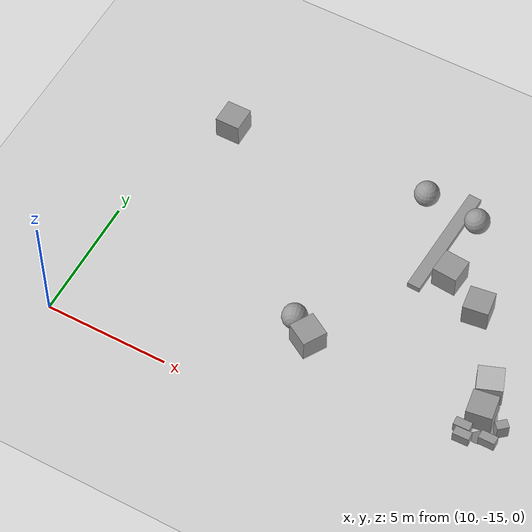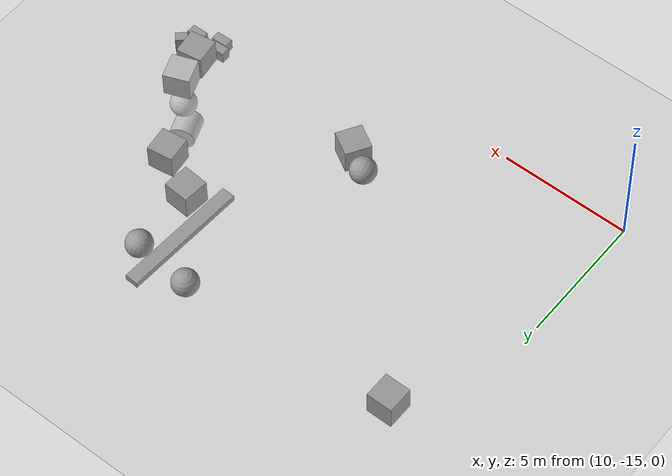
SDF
<sdf version="1.6">
 <world name="default">
  <model name="ground_plane">
   <static>1</static>
   <link name="link">
    <collision name="collision">
     <geometry><plane><normal>0 0 1</normal><size>100 100</size></plane></geometry>
     <surface><friction><ode><mu>100</mu><mu2>50</mu2></ode></friction></surface>
    </collision>
    <visual name="visual">
     <cast_shadows>0</cast_shadows>
     <geometry><plane><normal>0 0 1</normal><size>100 100</size></plane></geometry>
    </visual>
   </link>
  </model>
  <model name="unit_box_8_clone">
   <pose>21.629 -5.33666 0.118862 6e-06 -0.000971 -1.61786</pose>
   <link name="link">
    <inertial>
     <mass>1</mass>
     <inertia>
      <ixx>0.166667</ixx>
      <ixy>0</ixy>
      <ixz>0</ixz>
      <iyy>0.166667</iyy>
      <iyz>0</iyz>
      <izz>0.166667</izz>
     </inertia>
    </inertial>
    <collision name="collision"><geometry><box><size>4.79587 0.517599 0.242375</size></box></geometry></collision>
    <visual name="visual">
     <geometry><box><size>4.79587 0.517599 0.242375</size></box></geometry>
     <material>
      <script><name>Gazebo/Grey</name><uri>file://media/materials/scripts/gazebo.material</uri></script>
     </material>
    </visual>
   </link>
  </model>
  <model name="unit_box_9">
   <pose>24.1258 -7.5853 0.499996 0 -9e-06 0.13837</pose>
   <link name="link">
    <inertial>
     <mass>1</mass>
     <inertia>
      <ixx>0.166667</ixx>
      <ixy>0</ixy>
      <ixz>0</ixz>
      <iyy>0.166667</iyy>
      <iyz>0</iyz>
      <izz>0.166667</izz>
     </inertia>
    </inertial>
    <collision name="collision"><geometry><box><size>1 1 1</size></box></geometry></collision>
    <visual name="visual">
     <geometry><box><size>1 1 1</size></box></geometry>
     <material>
      <script><name>Gazebo/Grey</name><uri>file://media/materials/scripts/gazebo.material</uri></script>
     </material>
    </visual>
   </link>
  </model>
  <model name="unit_box_10">
   <pose>22.5215 -6.7081 0.499995 -1.57079 -1.57079 1.48797</pose>
   <link name="link">
    <inertial>
     <mass>1</mass>
     <inertia>
      <ixx>0.166667</ixx>
      <ixy>0</ixy>
      <ixz>0</ixz>
      <iyy>0.166667</iyy>
      <iyz>0</iyz>
      <izz>0.166667</izz>
     </inertia>
    </inertial>
    <collision name="collision"><geometry><box><size>1 1 1</size></box></geometry></collision>
    <visual name="visual">
     <geometry><box><size>1 1 1</size></box></geometry>
     <material>
      <script><name>Gazebo/Grey</name><uri>file://media/materials/scripts/gazebo.material</uri></script>
     </material>
    </visual>
   </link>
  </model>
  <model name="unit_sphere">
   <pose>22.3734 -4.09521 0.5 -0.268434 0.182582 2.81227</pose>
   <link name="link">
    <inertial>
     <mass>1</mass>
     <inertia><ixx>0.1</ixx><ixy>0</ixy><ixz>0</ixz><iyy>0.1</iyy><iyz>0</iyz><izz>0.1</izz></inertia>
    </inertial>
    <collision name="collision"><geometry><sphere><radius>0.5</radius></sphere></geometry></collision>
    <visual name="visual">
     <geometry><sphere><radius>0.5</radius></sphere></geometry>
     <material>
      <script><name>Gazebo/Grey</name><uri>file://media/materials/scripts/gazebo.material</uri></script>
     </material>
    </visual>
   </link>
  </model>
  <model name="unit_box_12">
   <pose>19.2037 -11.7334 0.5 0 -0 1.03868</pose>
   <link name="link">
    <inertial>
     <mass>1</mass>
     <inertia>
      <ixx>0.166667</ixx>
      <ixy>0</ixy>
      <ixz>0</ixz>
      <iyy>0.166667</iyy>
      <iyz>0</iyz>
      <izz>0.166667</izz>
     </inertia>
    </inertial>
    <collision name="collision"><geometry><box><size>1 1 1</size></box></geometry></collision>
    <visual name="visual">
     <geometry><box><size>1 1 1</size></box></geometry>
     <material>
      <script><name>Gazebo/Grey</name><uri>file://media/materials/scripts/gazebo.material</uri></script>
     </material>
    </visual>
   </link>
  </model>
  <model name="unit_sphere_0">
   <pose>18.3546 -11.2029 0.5 -1.68202 -0.18753 0.304167</pose>
   <link name="link">
    <inertial>
     <mass>1</mass>
     <inertia><ixx>0.1</ixx><ixy>0</ixy><ixz>0</ixz><iyy>0.1</iyy><iyz>0</iyz><izz>0.1</izz></inertia>
    </inertial>
    <collision name="collision"><geometry><sphere><radius>0.5</radius></sphere></geometry></collision>
    <visual name="visual">
     <geometry><sphere><radius>0.5</radius></sphere></geometry>
     <material>
      <script><name>Gazebo/Grey</name><uri>file://media/materials/scripts/gazebo.material</uri></script>
     </material>
    </visual>
   </link>
  </model>
  <model name="unit_sphere_3">
   <pose>20.1193 -3.86529 0.5 -0.082975 0.010839 -0.333903</pose>
   <link name="link">
    <inertial>
     <mass>1</mass>
     <inertia><ixx>0.1</ixx><ixy>0</ixy><ixz>0</ixz><iyy>0.1</iyy><iyz>0</iyz><izz>0.1</izz></inertia>
    </inertial>
    <collision name="collision"><geometry><sphere><radius>0.5</radius></sphere></geometry></collision>
    <visual name="visual">
     <geometry><sphere><radius>0.5</radius></sphere></geometry>
     <material>
      <script><name>Gazebo/Grey</name><uri>file://media/materials/scripts/gazebo.material</uri></script>
     </material>
    </visual>
   </link>
  </model>
  <model name="unit_box_34">
   <pose>11.9407 -4.48374 0.499995 -0 1e-05 -1.5e-05</pose>
   <link name="link">
    <inertial>
     <mass>1</mass>
     <inertia>
      <ixx>0.166667</ixx>
      <ixy>0</ixy>
      <ixz>0</ixz>
      <iyy>0.166667</iyy>
      <iyz>0</iyz>
      <izz>0.166667</izz>
     </inertia>
    </inertial>
    <collision name="collision"><geometry><box><size>1 1 1</size></box></geometry></collision>
    <visual name="visual">
     <geometry><box><size>1 1 1</size></box></geometry>
     <material>
      <script><name>Gazebo/Grey</name><uri>file://media/materials/scripts/gazebo.material</uri></script>
     </material>
    </visual>
   </link>
  </model>
  <model name="unit_box_39">
   <pose>26.1714 -11.494 0.499999 -1e-06 4e-06 0.152934</pose>
   <link name="link">
    <inertial>
     <mass>1</mass>
     <inertia>
      <ixx>0.166667</ixx>
      <ixy>0</ixy>
      <ixz>0</ixz>
      <iyy>0.166667</iyy>
      <iyz>0</iyz>
      <izz>0.166667</izz>
     </inertia>
    </inertial>
    <collision name="collision"><geometry><box><size>1 1 1</size></box></geometry></collision>
    <visual name="visual">
     <geometry><box><size>1 1 1</size></box></geometry>
     <material>
      <script><name>Gazebo/Grey</name><uri>file://media/materials/scripts/gazebo.material</uri></script>
     </material>
    </visual>
   </link>
  </model>
  <model name="unit_box_39_clone">
   <pose>27.0731 -11.7173 0.318058 2.4196 1.57079 3.14159</pose>
   <link name="link">
    <inertial>
     <mass>1</mass>
     <inertia>
      <ixx>0.166667</ixx>
      <ixy>0</ixy>
      <ixz>0</ixz>
      <iyy>0.166667</iyy>
      <iyz>0</iyz>
      <izz>0.166667</izz>
     </inertia>
    </inertial>
    <collision name="collision">
     <geometry><box><size>0.636116 0.349444 0.457252</size></box></geometry>
    </collision>
    <visual name="visual">
     <geometry><box><size>0.636116 0.349444 0.457252</size></box></geometry>
     <material>
      <script><name>Gazebo/Grey</name><uri>file://media/materials/scripts/gazebo.material</uri></script>
     </material>
    </visual>
   </link>
  </model>
  <model name="unit_box_39_clone_0">
   <pose>25.7962 -12.2559 0.228626 0 -0 0.035938</pose>
   <link name="link">
    <inertial>
     <mass>1</mass>
     <inertia>
      <ixx>0.166667</ixx>
      <ixy>0</ixy>
      <ixz>0</ixz>
      <iyy>0.166667</iyy>
      <iyz>0</iyz>
      <izz>0.166667</izz>
     </inertia>
    </inertial>
    <collision name="collision">
     <geometry><box><size>0.636116 0.349444 0.457252</size></box></geometry>
    </collision>
    <visual name="visual">
     <geometry><box><size>0.636116 0.349444 0.457252</size></box></geometry>
     <material>
      <script><name>Gazebo/Grey</name><uri>file://media/materials/scripts/gazebo.material</uri></script>
     </material>
    </visual>
   </link>
  </model>
  <model name="unit_box_39_clone_1">
   <pose>25.9514 -12.619 0.228626 0 -0 0.030625</pose>
   <link name="link">
    <inertial>
     <mass>1</mass>
     <inertia>
      <ixx>0.166667</ixx>
      <ixy>0</ixy>
      <ixz>0</ixz>
      <iyy>0.166667</iyy>
      <iyz>0</iyz>
      <izz>0.166667</izz>
     </inertia>
    </inertial>
    <collision name="collision">
     <geometry><box><size>0.636116 0.349444 0.457252</size></box></geometry>
    </collision>
    <visual name="visual">
     <geometry><box><size>0.636116 0.349444 0.457252</size></box></geometry>
     <material>
      <script><name>Gazebo/Grey</name><uri>file://media/materials/scripts/gazebo.material</uri></script>
     </material>
    </visual>
   </link>
  </model>
  <model name="unit_box_39_clone_2">
   <pose>26.8388 -12.3212 0.228626 0 -0 0.005664</pose>
   <link name="link">
    <inertial>
     <mass>1</mass>
     <inertia>
      <ixx>0.166667</ixx>
      <ixy>0</ixy>
      <ixz>0</ixz>
      <iyy>0.166667</iyy>
      <iyz>0</iyz>
      <izz>0.166667</izz>
     </inertia>
    </inertial>
    <collision name="collision">
     <geometry><box><size>0.636116 0.349444 0.457252</size></box></geometry>
    </collision>
    <visual name="visual">
     <geometry><box><size>0.636116 0.349444 0.457252</size></box></geometry>
     <material>
      <script><name>Gazebo/Grey</name><uri>file://media/materials/scripts/gazebo.material</uri></script>
     </material>
    </visual>
   </link>
  </model>
  <model name="textured_shapes">
   <pose>25.9495 -10.3953 -1 -1.5708 -0 0.364415</pose>
   <link name="box">
    <pose>0 -1.5 0 0 -0 0</pose>
    <collision name="collision"><geometry><box><size>1 1 1</size></box></geometry></collision>
    <visual name="visual">
     <geometry><box><size>1 1 1</size></box></geometry>
     <material>
      <script>
       <uri>model://textured_shapes/materials/scripts</uri>
       <uri>model://textured_shapes/materials/textures</uri>
       <name>TexturedShape/Squares</name>
      </script>
     </material>
    </visual>
    <inertial>
     <inertia><ixx>1</ixx><ixy>0</ixy><ixz>0</ixz><iyy>1</iyy><iyz>0</iyz><izz>1</izz></inertia>
     <mass>1</mass>
    </inertial>
   </link>
   <link name="sphere">
    <collision name="collision"><geometry><sphere><radius>0.5</radius></sphere></geometry></collision>
    <visual name="visual">
     <geometry><sphere><radius>0.5</radius></sphere></geometry>
     <material>
      <script>
       <uri>model://textured_shapes/materials/scripts</uri>
       <uri>model://textured_shapes/materials/textures</uri>
       <name>TexturedShape/Squares</name>
      </script>
     </material>
    </visual>
    <inertial>
     <inertia><ixx>1</ixx><ixy>0</ixy><ixz>0</ixz><iyy>1</iyy><iyz>0</iyz><izz>1</izz></inertia>
     <mass>1</mass>
    </inertial>
   </link>
   <link name="cylinder">
    <pose>0 1.5 0 0 -0 0</pose>
    <collision name="collision">
     <geometry><cylinder><radius>0.5</radius><length>1</length></cylinder></geometry>
    </collision>
    <visual name="visual">
     <geometry><cylinder><radius>0.5</radius><length>1</length></cylinder></geometry>
     <material>
      <script>
       <uri>model://textured_shapes/materials/scripts</uri>
       <uri>model://textured_shapes/materials/textures</uri>
       <name>TexturedShape/Squares</name>
      </script>
     </material>
    </visual>
    <inertial>
     <inertia><ixx>1</ixx><ixy>0</ixy><ixz>0</ixz><iyy>1</iyy><iyz>0</iyz><izz>1</izz></inertia>
     <mass>1</mass>
    </inertial>
   </link>
  </model>
 </world>
</sdf>
